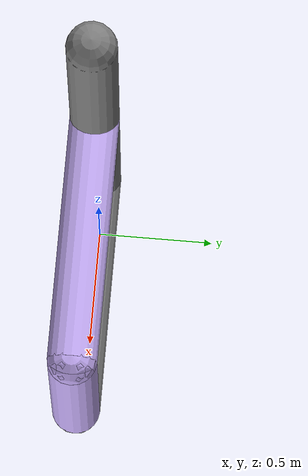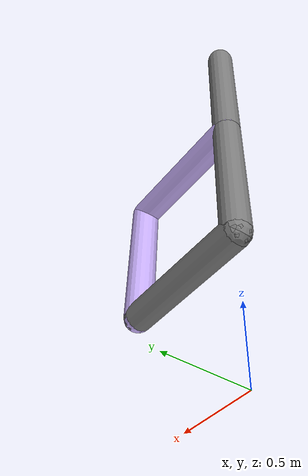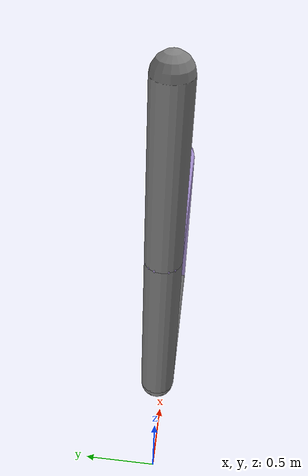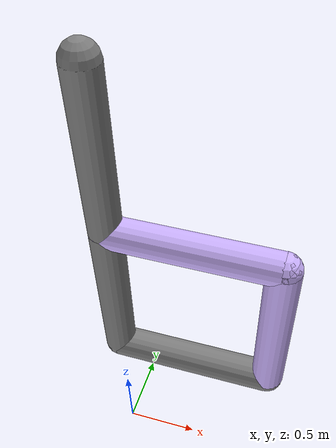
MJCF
<mujoco model="diamond">
	<compiler angle="radian" coordinate="global"/>
    <default>
        <geom contype="0" conaffinity="1" size="0.1"/>
        <joint damping="0.5" limited="true" range="-1.25 1.25"/>
    </default>
	<worldbody>

        <body name="top" euler="0 0 0">
            <geom type="capsule" fromto="0 0 3 0 0 2"/>
            <joint axis="0 1 0" name="top" pos="0 0 3"/>
            <body name="right" euler="-1.57 0 0">
                <geom type="capsule" fromto="0 0 2 1 0 2" rgba=".8 .7 9 1"/>
                <joint axis="0 1 0" name="right" pos="0 0 2"/>
                <body name="down" euler="-1.57 0 0">
                    <geom type="capsule" fromto="1 0 2 1 0 1" rgba=".8 .7 9 1"/>
                    <joint axis="0 1 0" name="down" pos="1 0 2"/>
                    <body name="left" euler="-1.57 0 0">
                        <geom type="capsule" fromto="1 0 1 0 0 1"/>
                        <joint axis="0 1 0" name="left" pos="1 0 1"/>
                        <body name="up" euler="-1.57 0 0">
                            <geom type="capsule" fromto="0 0 1 0 0 2"/>
                            <joint axis="0 1 0" name="up" pos="0 0 1"/>
                        </body>
                    </body>
                </body>
            </body>
        </body>

	</worldbody>
	<equality>
		<connect anchor="0 0 2" body1="top" body2="up" name="equality_constraint"/>
	</equality>
</mujoco>
